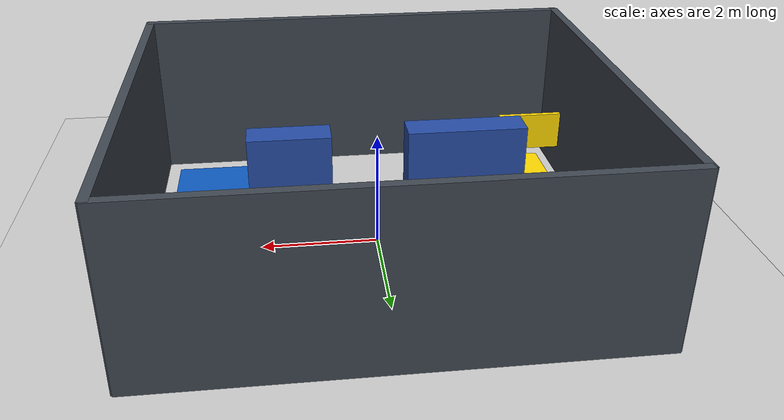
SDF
<?xml version='1.0'?>
<sdf version='1.6'>
  <world name='warehouse_world'>
    <include><uri>model://ground_plane</uri></include>
    <include><uri>model://sun</uri></include>

    <physics type='ode'>
      <max_step_size>0.001</max_step_size>
      <real_time_update_rate>1000</real_time_update_rate>
      <real_time_factor>1</real_time_factor>
    </physics>

    <!-- Warehouse perimeter: 8 m x 7 m, with a clear robot-sized interior. -->
    <model name='warehouse_walls'>
      <static>true</static>
      <link name='walls'>
        <collision name='north_collision'><pose>0 3.45 1.5 0 0 0</pose><geometry><box><size>8 0.15 3</size></box></geometry></collision>
        <collision name='south_collision'><pose>0 -3.45 1.5 0 0 0</pose><geometry><box><size>8 0.15 3</size></box></geometry></collision>
        <collision name='east_collision'><pose>3.95 0 1.5 0 0 0</pose><geometry><box><size>0.15 7 3</size></box></geometry></collision>
        <collision name='west_collision'><pose>-3.95 0 1.5 0 0 0</pose><geometry><box><size>0.15 7 3</size></box></geometry></collision>
        <visual name='north_visual'><pose>0 3.45 1.5 0 0 0</pose><geometry><box><size>8 0.15 3</size></box></geometry><material><ambient>0.25 0.28 0.32 1</ambient></material></visual>
        <visual name='south_visual'><pose>0 -3.45 1.5 0 0 0</pose><geometry><box><size>8 0.15 3</size></box></geometry><material><ambient>0.25 0.28 0.32 1</ambient></material></visual>
        <visual name='east_visual'><pose>3.95 0 1.5 0 0 0</pose><geometry><box><size>0.15 7 3</size></box></geometry><material><ambient>0.25 0.28 0.32 1</ambient></material></visual>
        <visual name='west_visual'><pose>-3.95 0 1.5 0 0 0</pose><geometry><box><size>0.15 7 3</size></box></geometry><material><ambient>0.25 0.28 0.32 1</ambient></material></visual>
      </link>
    </model>

    <!-- Four warehouse rack rows create aisles for the AMR. -->
    <model name='rack_row_north_west'><static>true</static><pose>-1.65 1.55 0 0 0 0</pose><link name='rack'>
      <collision name='body'><pose>0 0 0.9 0 0 0</pose><geometry><box><size>2.1 0.55 1.8</size></box></geometry></collision>
      <visual name='body'><pose>0 0 0.9 0 0 0</pose><geometry><box><size>2.1 0.55 1.8</size></box></geometry><material><ambient>0.12 0.22 0.42 1</ambient><diffuse>0.15 0.30 0.65 1</diffuse></material></visual>
    </link></model>
    <model name='rack_row_north_east'><static>true</static><pose>1.45 1.55 0 0 0 0</pose><link name='rack'>
      <collision name='body'><pose>0 0 0.9 0 0 0</pose><geometry><box><size>1.45 0.55 1.8</size></box></geometry></collision>
      <visual name='body'><pose>0 0 0.9 0 0 0</pose><geometry><box><size>1.45 0.55 1.8</size></box></geometry><material><ambient>0.12 0.22 0.42 1</ambient><diffuse>0.15 0.30 0.65 1</diffuse></material></visual>
    </link></model>
    <model name='rack_row_south_west'><static>true</static><pose>-1.65 -0.75 0 0 0 0</pose><link name='rack'>
      <collision name='body'><pose>0 0 0.9 0 0 0</pose><geometry><box><size>2.1 0.55 1.8</size></box></geometry></collision>
      <visual name='body'><pose>0 0 0.9 0 0 0</pose><geometry><box><size>2.1 0.55 1.8</size></box></geometry><material><ambient>0.12 0.22 0.42 1</ambient><diffuse>0.15 0.30 0.65 1</diffuse></material></visual>
    </link></model>
    <model name='rack_row_south_east'><static>true</static><pose>1.45 -0.75 0 0 0 0</pose><link name='rack'>
      <collision name='body'><pose>0 0 0.9 0 0 0</pose><geometry><box><size>1.45 0.55 1.8</size></box></geometry></collision>
      <visual name='body'><pose>0 0 0.9 0 0 0</pose><geometry><box><size>1.45 0.55 1.8</size></box></geometry><material><ambient>0.12 0.22 0.42 1</ambient><diffuse>0.15 0.30 0.65 1</diffuse></material></visual>
    </link></model>

    <!-- Loading zone and pallet stacks. -->
    <model name='loading_zone'><static>true</static><pose>2.9 -2.55 0.006 0 0 0</pose><link name='zone'><visual name='floor'><geometry><box><size>1.5 1.1 0.012</size></box></geometry><material><ambient>0.05 0.35 0.75 1</ambient><diffuse>0.05 0.35 0.75 1</diffuse></material></visual></link></model>
    <!-- Dedicated charging bay. Battery charger coordinates are (-3.2, -2.55). -->
    <model name='charging_port'><static>true</static><pose>-3.2 -2.55 0.012 0 0 0</pose><link name='pad'>
      <visual name='yellow_pad'><geometry><box><size>1.0 0.9 0.02</size></box></geometry><material><ambient>1 0.85 0 1</ambient><diffuse>1 0.85 0 1</diffuse><emissive>0.15 0.1 0 1</emissive></material></visual>
    </link></model>
    <model name='charging_sign'><static>true</static><pose>-3.2 -2.05 1.0 0 0 0</pose><link name='sign'><visual name='board'><geometry><box><size>1.2 0.08 0.7</size></box></geometry><material><ambient>1 0.85 0 1</ambient></material></visual></link></model>
  </world>
</sdf>
